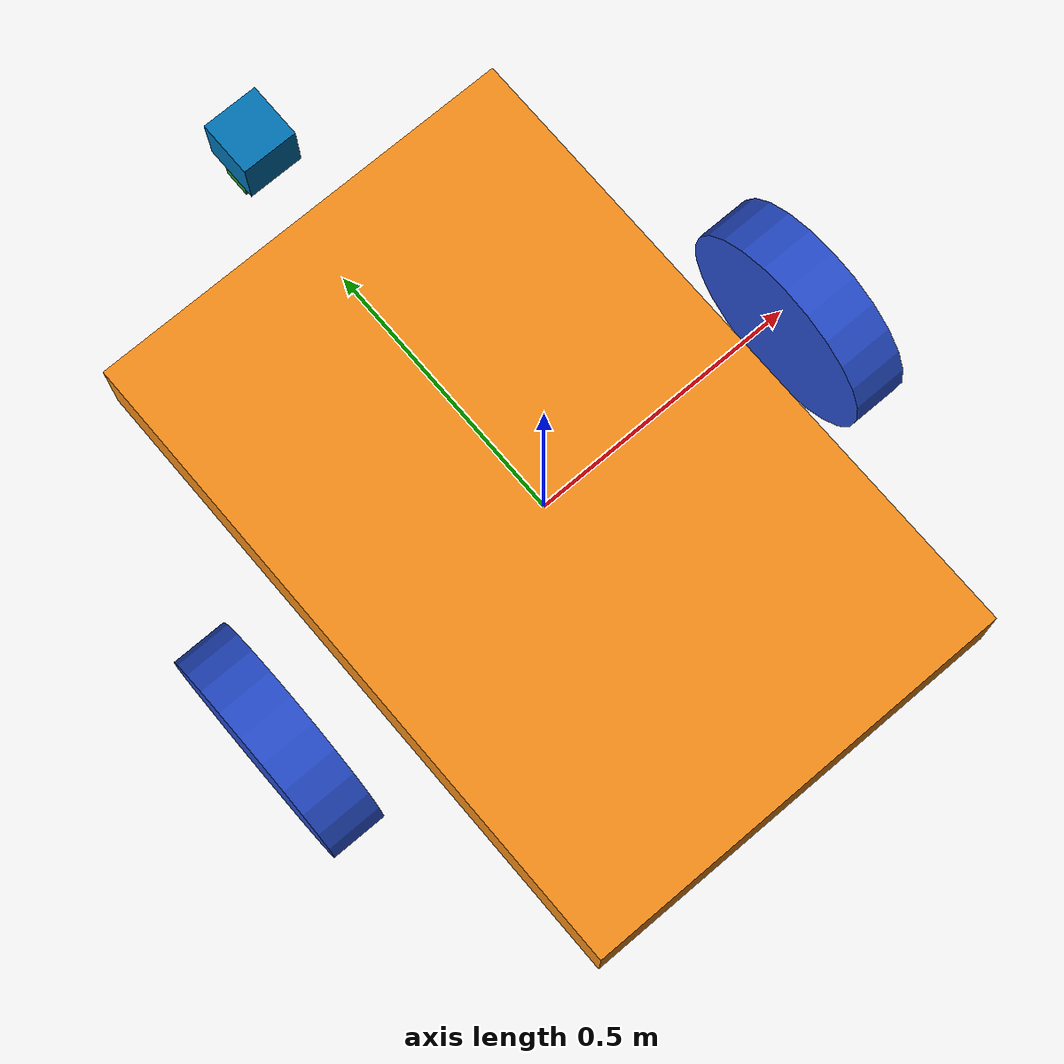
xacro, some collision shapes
<?xml version='1.0'?>

<robot name="myrobot" xmlns:xacro="http://www.ros.org/wiki/xacro">

  <xacro:property name="cameraSize" value="0.05"/>
  <xacro:property name="cameraMass" value="0.1"/>

  <xacro:include filename="$(find mybot_description)/urdf/mybot.gazebo" />
  <xacro:include filename="$(find mybot_description)/urdf/materials.xacro" />
  <xacro:include filename="$(find mybot_description)/urdf/macros.xacro" />

  <link name='chassis'>
    <pose>0 0 0.1 0 0 0</pose>

    <inertial>
      <mass value="10.0"/>
      <origin xyz="0 0.3 0" rpy=" 0 0 0"/>
      <inertia
          ixx="0.1" ixy="0" ixz="0"
          iyy="0.1" iyz="0"
          izz="0.1"
      />
    </inertial>

    <collision name='collision'>
     <geometry>
        <box size=".8 1.2 0.15"/>
      </geometry>
    </collision>

    <visual name='chassis_visual'>
      <origin xyz="0 0 0" rpy=" 0 0 0"/>
     <geometry>
        <box size=".8 1.2 0.15"/>
      </geometry>
    </visual>

    <collision name='caster_collision1'>
      <origin xyz="0 -0.4 -0.1" rpy=" 0 0 0"/>
      <geometry>
        <sphere radius="0.15"/>
      </geometry>
      <surface>
        <friction>
          <ode>
            <mu>0</mu>
            <mu2>0</mu2>
            <slip1>1.0</slip1>
            <slip2>1.0</slip2>
          </ode>
        </friction>
      </surface>
    </collision>

    <visual name='caster_visual1'>
      <origin xyz="0 -0.4 -0.1" rpy=" 0 0 0"/>
      <geometry>
        <sphere radius="0.15"/>
      </geometry>
    </visual>

    <collision name='caster_collision2'>
      <origin xyz="0 0.4 -0.1" rpy=" 0 0 0"/>
      <geometry>
        <sphere radius="0.15"/>
      </geometry>
      <surface>
        <friction>
          <ode>
            <mu>0</mu>
            <mu2>0</mu2>
            <slip1>1.0</slip1>
            <slip2>1.0</slip2>
          </ode>
        </friction>
      </surface>
    </collision>

    <visual name='caster_visual2'>
      <origin xyz="0 0.4 -0.1" rpy=" 0 0 0"/>
      <geometry>
        <sphere radius="0.15"/>
      </geometry>
    </visual>
  </link>

  <link name="left_wheel">
    <!--origin xyz="0.1 0.13 0.1" rpy="0 1.5707 1.5707"/-->
    <collision name="collision">
      <origin xyz="0 0 0" rpy="0 1.5707 0"/>
      <geometry>
        <cylinder radius="0.2" length="0.1"/>
      </geometry>
    </collision>
    <visual name="left_wheel_visual">
      <origin xyz="0 0 0" rpy="0 1.5707 0"/>
      <geometry>
        <cylinder radius="0.2" length="0.1"/>
      </geometry>
    </visual>
    <inertial>
      <origin xyz="0 0 0" rpy="0 1.5707 0"/>
      <mass value="5"/>
      <cylinder_inertia m="5" r="0.2" h="0.1"/>
      <inertia
        ixx="0.05" ixy="0.0" ixz="0.0"
        iyy="0.05" iyz="0.0"
        izz="0.1"/>
    </inertial>
  </link>

  <link name="right_wheel">
    <!--origin xyz="0.1 -0.13 0.1" rpy="0 1.5707 1.5707"/-->
    <collision name="collision">
      <origin xyz="0 0 0" rpy="0 1.5707 0"/>
      <geometry>
        <cylinder radius="0.2" length="0.1"/>
      </geometry>
    </collision>
    <visual name="right_wheel_visual">
      <origin xyz="0 0 0" rpy="0 1.5707 0"/>
      <geometry>
        <cylinder radius="0.2" length="0.1"/>
      </geometry>
    </visual>
    <inertial>
      <origin xyz="0 0 0" rpy="0 1.5707 1.5707"/>
      <mass value="5"/>
      <cylinder_inertia m="5" r="0.2" h="0.1"/>
      <inertia
        ixx="0.05" ixy="0.0" ixz="0.0"
        iyy="0.05" iyz="0.0"
        izz="0.1"/>
    </inertial>
  </link>

  <joint type="continuous" name="left_wheel_hinge">
    <origin xyz="-0.55 0 -0.1" rpy="0 0 0"/>
    <!--origin xyz="0.1 0.13 0" rpy="0 1.5707 1.5707"/-->
    <child link="left_wheel"/>
    <parent link="chassis"/>
    <axis xyz="1 0 0" rpy="0 0 0"/>
    <limit effort="100" velocity="100"/>
    <joint_properties damping="1.0" friction="1.0"/>
  </joint>

  <joint type="continuous" name="right_wheel_hinge">
    <origin xyz="0.55 0 -0.1" rpy="0 0 0"/>
    <!--origin xyz="0.1 -0.13 0" rpy="0 1.5707 1.5707"/-->
    <child link="right_wheel"/>
    <parent link="chassis"/>
    <axis xyz="1 0 0" rpy="0 0 0"/>
    <limit effort="100" velocity="100"/>
    <joint_properties damping="1.0" friction="1.0"/>
  </joint>

<!--   camera  -->

  <link name="camera">
    <collision>
      <origin xyz="0 0 0" rpy="0 0 1.5707"/>
      <geometry>
        <box size="${cameraSize} ${cameraSize} ${cameraSize}"/>
      </geometry>
    </collision>

    <visual>
      <origin xyz="0 0 0" rpy="0 0 1.5707"/>
      <geometry>
        <box size="${cameraSize} ${cameraSize} ${cameraSize}"/>
      </geometry>
      <material name="green"/>
    </visual>

    <inertial>
      <mass value="${cameraMass}" />
      <origin xyz="0 0.5 0" rpy="0 0 1.5707"/>
      <box_inertia m="${cameraMass}" x="${cameraSize}" y="${cameraSize}" z="${cameraSize}" />
      <inertia ixx="1e-6" ixy="0" ixz="0" iyy="1e-6" iyz="0" izz="1e-6" />
    </inertial>
  </link>

  <joint name="camera_joint" type="fixed">
    <axis xyz="0 1 0" />
    <origin xyz="0 0.75 0" rpy="0 0 1.5707"/>
    <parent link="chassis"/>
    <child link="camera"/>
  </joint>

  <!-- Hokuyo Laser -->
  <link name="hokuyo">
    <collision>
      <origin xyz="0 0 0" rpy="0 0 1.5707"/>
      <geometry>
    <box size="0.1 0.1 0.1"/>
      </geometry>
    </collision>

    <visual>
      <origin xyz="0 0 0" rpy="0 0 1.5707"/>
      <geometry>
        <mesh filename="package://mybot_description/meshes/hokuyo.dae"/>
      </geometry>
    </visual>

    <inertial>
      <mass value="1e-5" />
      <origin xyz="0 0 0" rpy="0 0 1.5707"/>
      <inertia ixx="1e-6" ixy="0" ixz="0" iyy="1e-6" iyz="0" izz="1e-6" />
    </inertial>
  </link>

  <joint name="hokuyo_joint" type="fixed">
    <axis xyz="0 1 0" />
    <origin xyz="0 0.7 .2" rpy="0 0 1.5707"/>
    <parent link="chassis"/>
    <child link="hokuyo"/>
  </joint>

</robot>
